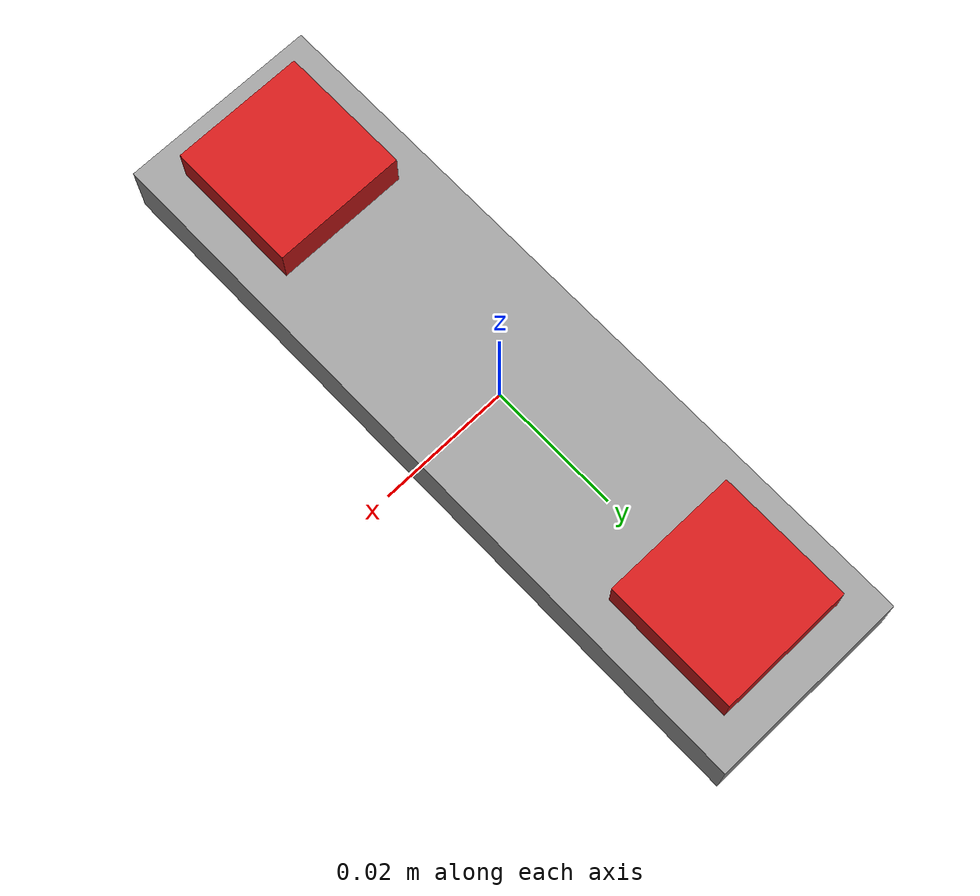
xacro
<?xml version="1.0"?>
<robot name="dpa06b_2sensors" xmlns:xacro="http://ros.org/wiki/xacro">

  <xacro:arg name="sensor1_frame_id" default="force_sensor1" />
  <xacro:arg name="sensor2_frame_id" default="force_sensor2" />
  <!-- Distance [m] between the two sensor frames, centered on base_link -->
  <xacro:arg name="sensor_spacing" default="0.08" />

  <xacro:property name="sensor1_frame_id" value="$(arg sensor1_frame_id)" />
  <xacro:property name="sensor2_frame_id" value="$(arg sensor2_frame_id)" />
  <xacro:property name="sensor_spacing" value="$(arg sensor_spacing)" />

  <material name="tg_grey">
    <color rgba="0.6 0.6 0.6 1.0" />
  </material>
  <material name="tg_red">
    <color rgba="0.8 0.1 0.1 1.0" />
  </material>

  <link name="base_link" />

  <!-- Common mounting base for the amplifier / sensor pair -->
  <link name="force_sensor_base">
    <visual>
      <origin xyz="0 0 0" rpy="0 0 0" />
      <geometry>
        <box size="0.03 ${sensor_spacing + 0.03} 0.01" />
      </geometry>
      <material name="tg_grey" />
    </visual>
  </link>

  <joint name="force_sensor_base_joint" type="fixed">
    <parent link="base_link" />
    <child link="force_sensor_base" />
    <origin xyz="0 0 0" rpy="0 0 0" />
  </joint>

  <!-- Sensor 1 (dpa06b_ros_publisher ~/force1, ch1-3) -->
  <link name="${sensor1_frame_id}">
    <visual>
      <origin xyz="0 0 0" rpy="0 0 0" />
      <geometry>
        <box size="0.02 0.02 0.006" />
      </geometry>
      <material name="tg_red" />
    </visual>
  </link>

  <joint name="${sensor1_frame_id}_joint" type="fixed">
    <parent link="force_sensor_base" />
    <child link="${sensor1_frame_id}" />
    <origin xyz="0 ${-sensor_spacing / 2.0} 0.008" rpy="0 0 0" />
  </joint>

  <!-- Sensor 2 (dpa06b_ros_publisher ~/force2, ch4-6) -->
  <link name="${sensor2_frame_id}">
    <visual>
      <origin xyz="0 0 0" rpy="0 0 0" />
      <geometry>
        <box size="0.02 0.02 0.006" />
      </geometry>
      <material name="tg_red" />
    </visual>
  </link>

  <joint name="${sensor2_frame_id}_joint" type="fixed">
    <parent link="force_sensor_base" />
    <child link="${sensor2_frame_id}" />
    <origin xyz="0 ${sensor_spacing / 2.0} 0.008" rpy="0 0 0" />
  </joint>

</robot>
